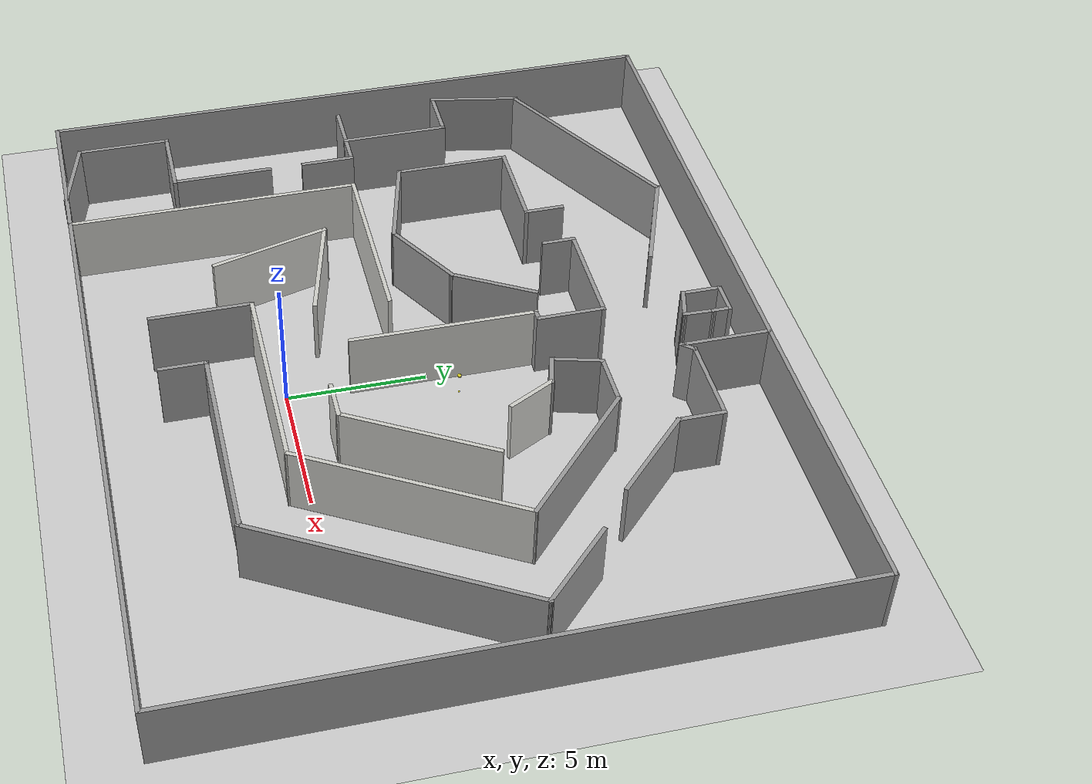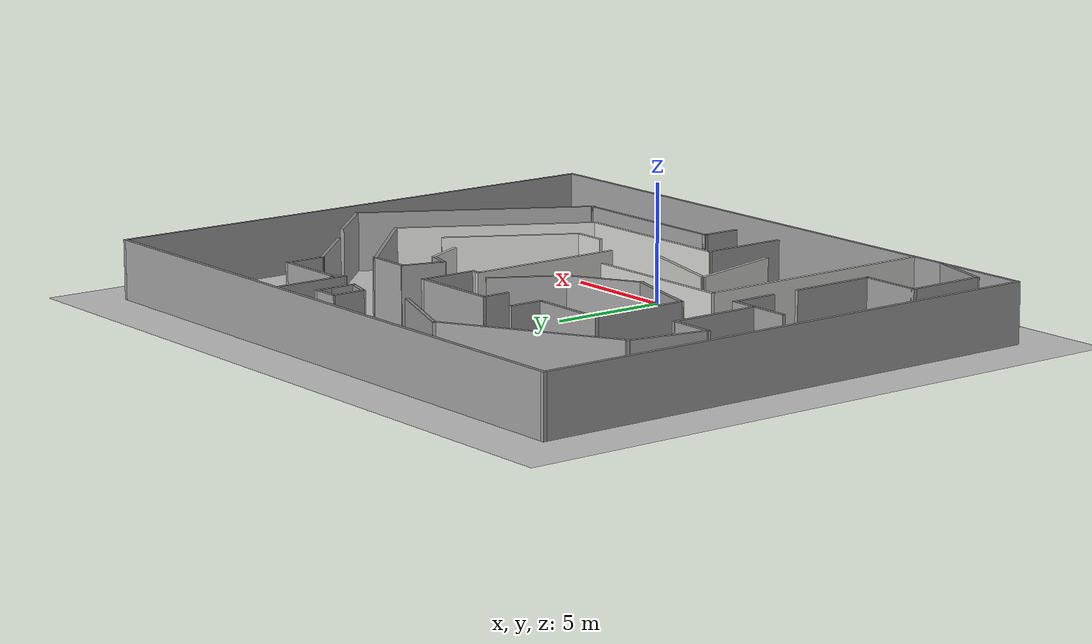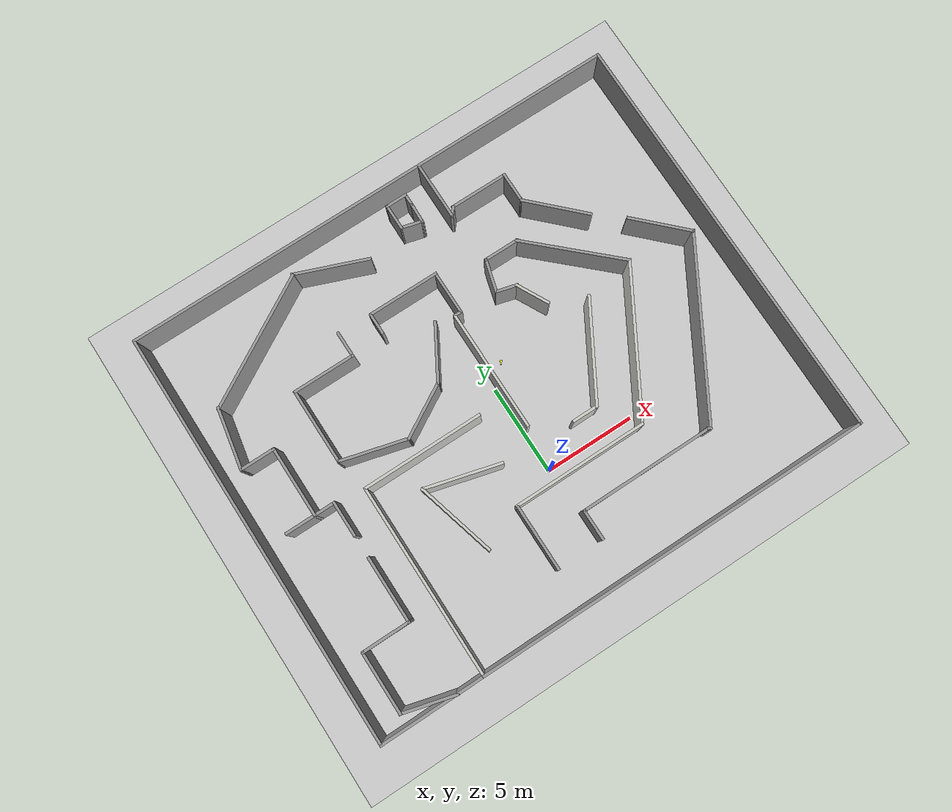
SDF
<?xml version="1.0" ?>
<sdf version="1.4">
  <world name="default">
    <include>
      <uri>model://ground_plane</uri>
    </include>
    <include>
      <uri>model://sun</uri>
    </include>
    <include>
	 	<uri>model://plastun_gazebo/maps/Labirint</uri>
      <name>Labirint</name>
      <pose>0.0 5.0 0 0 0 0</pose>
    </include>
        <include>
		<uri>model://plastun_gazebo/maps/Plafon</uri>
      <name>Plafon</name>
      <pose>1.0 6.0 0 0 0 0</pose>
    </include>
  </world>
</sdf>

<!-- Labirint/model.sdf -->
<sdf version='1.6'>
  <model name='Labirint'>
    <pose frame=''>-1.38385 -0.480945 0 0 -0 0</pose>
    <link name='Wall_0'>
      <collision name='Wall_0_Collision'>
        <geometry>
          <box>
            <size>6.75 0.15 2.5</size>
          </box>
        </geometry>
        <pose frame=''>0 0 1.25 0 -0 0</pose>
      </collision>
      <visual name='Wall_0_Visual'>
        <pose frame=''>0 0 1.25 0 -0 0</pose>
        <geometry>
          <box>
            <size>6.75 0.15 2.5</size>
          </box>
        </geometry>
        <material>
          <script>
            <uri>file://media/materials/scripts/gazebo.material</uri>
            <name>Gazebo/CeilingTiled</name>
          </script>
          <ambient>1 1 1 1</ambient>
        </material>
      </visual>
      <pose frame=''>0.153852 0.630945 0 0 -0 1.5708</pose>
    </link>
    <link name='Wall_1'>
      <collision name='Wall_1_Collision'>
        <geometry>
          <box>
            <size>0.5 0.15 2.5</size>
          </box>
        </geometry>
        <pose frame=''>0 0 1.25 0 -0 0</pose>
      </collision>
      <visual name='Wall_1_Visual'>
        <pose frame=''>0 0 1.25 0 -0 0</pose>
        <geometry>
          <box>
            <size>0.5 0.15 2.5</size>
          </box>
        </geometry>
        <material>
          <script>
            <uri>file://media/materials/scripts/gazebo.material</uri>
            <name>Gazebo/Grey</name>
          </script>
          <ambient>1 1 1 1</ambient>
        </material>
      </visual>
      <pose frame=''>0.328853 3.93094 0 0 -0 0</pose>
    </link>
    <link name='Wall_10'>
      <collision name='Wall_10_Collision'>
        <geometry>
          <box>
            <size>3.25 0.15 2.5</size>
          </box>
        </geometry>
        <pose frame=''>0 0 1.25 0 -0 0</pose>
      </collision>
      <visual name='Wall_10_Visual'>
        <pose frame=''>0 0 1.25 0 -0 0</pose>
        <geometry>
          <box>
            <size>3.25 0.15 2.5</size>
          </box>
        </geometry>
        <material>
          <script>
            <uri>file://media/materials/scripts/gazebo.material</uri>
            <name>Gazebo/Grey</name>
          </script>
          <ambient>1 1 1 1</ambient>
        </material>
      </visual>
      <pose frame=''>-3.73871 0.74657 0 0 -0 0.523599</pose>
    </link>
    <link name='Wall_11'>
      <collision name='Wall_11_Collision'>
        <geometry>
          <box>
            <size>3.25 0.15 2.5</size>
          </box>
        </geometry>
        <pose frame=''>0 0 1.25 0 -0 0</pose>
      </collision>
      <visual name='Wall_11_Visual'>
        <pose frame=''>0 0 1.25 0 -0 0</pose>
        <geometry>
          <box>
            <size>3.25 0.15 2.5</size>
          </box>
        </geometry>
        <material>
          <script>
            <uri>file://media/materials/scripts/gazebo.material</uri>
            <name>Gazebo/Grey</name>
          </script>
          <ambient>1 1 1 1</ambient>
        </material>
      </visual>
      <pose frame=''>-1.62137 2.86391 0 0 -0 1.0472</pose>
    </link>
    <link name='Wall_13'>
      <collision name='Wall_13_Collision'>
        <geometry>
          <box>
            <size>1.85876 0.15 2.5</size>
          </box>
        </geometry>
        <pose frame=''>0 0 1.25 0 -0 0</pose>
      </collision>
      <visual name='Wall_13_Visual'>
        <pose frame=''>0 0 1.25 0 -0 0</pose>
        <geometry>
          <box>
            <size>1.85876 0.15 2.5</size>
          </box>
        </geometry>
        <material>
          <script>
            <uri>file://media/materials/scripts/gazebo.material</uri>
            <name>Gazebo/Grey</name>
          </script>
          <ambient>1 1 1 1</ambient>
        </material>
      </visual>
      <pose frame=''>2.79429 4.68292 0 0 -0 1.29986</pose>
    </link>
    <link name='Wall_14'>
      <collision name='Wall_14_Collision'>
        <geometry>
          <box>
            <size>2 0.15 2.5</size>
          </box>
        </geometry>
        <pose frame=''>0 0 1.25 0 -0 0</pose>
      </collision>
      <visual name='Wall_14_Visual'>
        <pose frame=''>0 0 1.25 0 -0 0</pose>
        <geometry>
          <box>
            <size>2 0.15 2.5</size>
          </box>
        </geometry>
        <material>
          <script>
            <uri>file://media/materials/scripts/gazebo.material</uri>
            <name>Gazebo/Grey</name>
          </script>
          <ambient>1 1 1 1</ambient>
        </material>
      </visual>
      <pose frame=''>3.98313 5.50613 0 0 -0 0</pose>
    </link>
    <link name='Wall_15'>
      <collision name='Wall_15_Collision'>
        <geometry>
          <box>
            <size>5.93174 0.15 2.5</size>
          </box>
        </geometry>
        <pose frame=''>0 0 1.25 0 -0 0</pose>
      </collision>
      <visual name='Wall_15_Visual'>
        <pose frame=''>0 0 1.25 0 -0 0</pose>
        <geometry>
          <box>
            <size>5.93174 0.15 2.5</size>
          </box>
        </geometry>
        <material>
          <script>
            <uri>file://media/materials/scripts/gazebo.material</uri>
            <name>Gazebo/Grey</name>
          </script>
          <ambient>1 1 1 1</ambient>
        </material>
      </visual>
      <pose frame=''>6.97774 3.52447 0 0 0 -0.755277</pose>
    </link>
    <link name='Wall_16'>
      <collision name='Wall_16_Collision'>
        <geometry>
          <box>
            <size>8.5 0.15 2.5</size>
          </box>
        </geometry>
        <pose frame=''>0 0 1.25 0 -0 0</pose>
      </collision>
      <visual name='Wall_16_Visual'>
        <pose frame=''>0 0 1.25 0 -0 0</pose>
        <geometry>
          <box>
            <size>8.5 0.15 2.5</size>
          </box>
        </geometry>
        <material>
          <script>
            <uri>file://media/materials/scripts/gazebo.material</uri>
            <name>Gazebo/CeilingTiled</name>
          </script>
          <ambient>1 1 1 1</ambient>
        </material>
      </visual>
      <pose frame=''>6.99503 -2.07285 0 0 0 -2.0944</pose>
    </link>
    <link name='Wall_17'>
      <collision name='Wall_17_Collision'>
        <geometry>
          <box>
            <size>7.5 0.15 2.5</size>
          </box>
        </geometry>
        <pose frame=''>0 0 1.25 0 -0 0</pose>
      </collision>
      <visual name='Wall_17_Visual'>
        <pose frame=''>0 0 1.25 0 -0 0</pose>
        <geometry>
          <box>
            <size>7.5 0.15 2.5</size>
          </box>
        </geometry>
        <material>
          <script>
            <uri>file://media/materials/scripts/gazebo.material</uri>
            <name>Gazebo/CeilingTiled</name>
          </script>
          <ambient>1 1 1 1</ambient>
        </material>
      </visual>
      <pose frame=''>1.23253 -5.68851 0 0 -0 3.14159</pose>
    </link>
    <link name='Wall_18'>
      <collision name='Wall_18_Collision'>
        <geometry>
          <box>
            <size>3.75 0.15 2.5</size>
          </box>
        </geometry>
        <pose frame=''>0 0 1.25 0 -0 0</pose>
      </collision>
      <visual name='Wall_18_Visual'>
        <pose frame=''>0 0 1.25 0 -0 0</pose>
        <geometry>
          <box>
            <size>3.75 0.15 2.5</size>
          </box>
        </geometry>
        <material>
          <script>
            <uri>file://media/materials/scripts/gazebo.material</uri>
            <name>Gazebo/Grey</name>
          </script>
          <ambient>1 1 1 1</ambient>
        </material>
      </visual>
      <pose frame=''>-2.44247 -7.48851 0 0 0 -1.5708</pose>
    </link>
    <link name='Wall_2'>
      <collision name='Wall_2_Collision'>
        <geometry>
          <box>
            <size>2.5 0.15 2.5</size>
          </box>
        </geometry>
        <pose frame=''>0 0 1.25 0 -0 0</pose>
      </collision>
      <visual name='Wall_2_Visual'>
        <pose frame=''>0 0 1.25 0 -0 0</pose>
        <geometry>
          <box>
            <size>2.5 0.15 2.5</size>
          </box>
        </geometry>
        <material>
          <script>
            <uri>file://media/materials/scripts/gazebo.material</uri>
            <name>Gazebo/Grey</name>
          </script>
          <ambient>1 1 1 1</ambient>
        </material>
      </visual>
      <pose frame=''>0.503852 5.10595 0 0 -0 1.5708</pose>
    </link>
    <link name='Wall_20'>
      <collision name='Wall_20_Collision'>
        <geometry>
          <box>
            <size>1.75 0.15 2.5</size>
          </box>
        </geometry>
        <pose frame=''>0 0 1.25 0 -0 0</pose>
      </collision>
      <visual name='Wall_20_Visual'>
        <pose frame=''>0 0 1.25 0 -0 0</pose>
        <geometry>
          <box>
            <size>1.75 0.15 2.5</size>
          </box>
        </geometry>
        <material>
          <script>
            <uri>file://media/materials/scripts/gazebo.material</uri>
            <name>Gazebo/Grey</name>
          </script>
          <ambient>1 1 1 1</ambient>
        </material>
      </visual>
      <pose frame=''>0.146385 -8.46003 0 0 -0 1.5708</pose>
    </link>
    <link name='Wall_21'>
      <collision name='Wall_21_Collision'>
        <geometry>
          <box>
            <size>0.16 0.15 2.5</size>
          </box>
        </geometry>
        <pose frame=''>0 0 1.25 0 -0 0</pose>
      </collision>
      <visual name='Wall_21_Visual'>
        <pose frame=''>0 0 1.25 0 -0 0</pose>
        <geometry>
          <box>
            <size>0.16 0.15 2.5</size>
          </box>
        </geometry>
        <material>
          <script>
            <uri>file://media/materials/scripts/gazebo.material</uri>
            <name>Gazebo/Grey</name>
          </script>
          <ambient>1 1 1 1</ambient>
        </material>
      </visual>
      <pose frame=''>0.151385 -7.66003 0 0 -0 0</pose>
    </link>
    <link name='Wall_22'>
      <collision name='Wall_22_Collision'>
        <geometry>
          <box>
            <size>7.5 0.15 2.5</size>
          </box>
        </geometry>
        <pose frame=''>0 0 1.25 0 -0 0</pose>
      </collision>
      <visual name='Wall_22_Visual'>
        <pose frame=''>0 0 1.25 0 -0 0</pose>
        <geometry>
          <box>
            <size>7.5 0.15 2.5</size>
          </box>
        </geometry>
        <material>
          <script>
            <uri>file://media/materials/scripts/gazebo.material</uri>
            <name>Gazebo/Grey</name>
          </script>
          <ambient>1 1 1 1</ambient>
        </material>
      </visual>
      <pose frame=''>3.83139 -7.66003 0 0 -0 0</pose>
    </link>
    <link name='Wall_23'>
      <collision name='Wall_23_Collision'>
        <geometry>
          <box>
            <size>0.25 0.15 2.5</size>
          </box>
        </geometry>
        <pose frame=''>0 0 1.25 0 -0 0</pose>
      </collision>
      <visual name='Wall_23_Visual'>
        <pose frame=''>0 0 1.25 0 -0 0</pose>
        <geometry>
          <box>
            <size>0.25 0.15 2.5</size>
          </box>
        </geometry>
        <material>
          <script>
            <uri>file://media/materials/scripts/gazebo.material</uri>
            <name>Gazebo/Grey</name>
          </script>
          <ambient>1 1 1 1</ambient>
        </material>
      </visual>
      <pose frame=''>7.54969 -7.68503 0 0 0 -0.523599</pose>
    </link>
    <link name='Wall_24'>
      <collision name='Wall_24_Collision'>
        <geometry>
          <box>
            <size>10.25 0.15 2.5</size>
          </box>
        </geometry>
        <pose frame=''>0 0 1.25 0 -0 0</pose>
      </collision>
      <visual name='Wall_24_Visual'>
        <pose frame=''>0 0 1.25 0 -0 0</pose>
        <geometry>
          <box>
            <size>10.25 0.15 2.5</size>
          </box>
        </geometry>
        <material>
          <script>
            <uri>file://media/materials/scripts/gazebo.material</uri>
            <name>Gazebo/Grey</name>
          </script>
          <ambient>1 1 1 1</ambient>
        </material>
      </visual>
      <pose frame=''>10.118 -3.33661 0 0 -0 1.0472</pose>
    </link>
    <link name='Wall_25'>
      <collision name='Wall_25_Collision'>
        <geometry>
          <box>
            <size>0.15 0.15 2.5</size>
          </box>
        </geometry>
        <pose frame=''>0 0 1.25 0 -0 0</pose>
      </collision>
      <visual name='Wall_25_Visual'>
        <pose frame=''>0 0 1.25 0 -0 0</pose>
        <geometry>
          <box>
            <size>0.15 0.15 2.5</size>
          </box>
        </geometry>
        <material>
          <script>
            <uri>file://media/materials/scripts/gazebo.material</uri>
            <name>Gazebo/Grey</name>
          </script>
          <ambient>1 1 1 1</ambient>
        </material>
      </visual>
      <pose frame=''>12.643 1.03682 0 0 -0 0</pose>
    </link>
    <link name='Wall_26'>
      <collision name='Wall_26_Collision'>
        <geometry>
          <box>
            <size>3.5 0.15 2.5</size>
          </box>
        </geometry>
        <pose frame=''>0 0 1.25 0 -0 0</pose>
      </collision>
      <visual name='Wall_26_Visual'>
        <pose frame=''>0 0 1.25 0 -0 0</pose>
        <geometry>
          <box>
            <size>3.5 0.15 2.5</size>
          </box>
        </geometry>
        <material>
          <script>
            <uri>file://media/materials/scripts/gazebo.material</uri>
            <name>Gazebo/Grey</name>
          </script>
          <ambient>1 1 1 1</ambient>
        </material>
      </visual>
      <pose frame=''>11.4586 2.22123 0 0 -0 2.35619</pose>
    </link>
    <link name='Wall_28'>
      <collision name='Wall_28_Collision'>
        <geometry>
          <box>
            <size>3.75 0.15 2.5</size>
          </box>
        </geometry>
        <pose frame=''>0 0 1.25 0 -0 0</pose>
      </collision>
      <visual name='Wall_28_Visual'>
        <pose frame=''>0 0 1.25 0 -0 0</pose>
        <geometry>
          <box>
            <size>3.75 0.15 2.5</size>
          </box>
        </geometry>
        <material>
          <script>
            <uri>file://media/materials/scripts/gazebo.material</uri>
            <name>Gazebo/Grey</name>
          </script>
          <ambient>1 1 1 1</ambient>
        </material>
      </visual>
      <pose frame=''>7.52704 5.87689 0 0 -0 2.35619</pose>
    </link>
    <link name='Wall_29'>
      <collision name='Wall_29_Collision'>
        <geometry>
          <box>
            <size>1.75 0.15 2.5</size>
          </box>
        </geometry>
        <pose frame=''>0 0 1.25 0 -0 0</pose>
      </collision>
      <visual name='Wall_29_Visual'>
        <pose frame=''>0 0 1.25 0 -0 0</pose>
        <geometry>
          <box>
            <size>1.75 0.15 2.5</size>
          </box>
        </geometry>
        <material>
          <script>
            <uri>file://media/materials/scripts/gazebo.material</uri>
            <name>Gazebo/Grey</name>
          </script>
          <ambient>1 1 1 1</ambient>
        </material>
      </visual>
      <pose frame=''>6.25425 7.94968 0 0 -0 1.5708</pose>
    </link>
    <link name='Wall_3'>
      <collision name='Wall_3_Collision'>
        <geometry>
          <box>
            <size>4 0.15 2.5</size>
          </box>
        </geometry>
        <pose frame=''>0 0 1.25 0 -0 0</pose>
      </collision>
      <visual name='Wall_3_Visual'>
        <pose frame=''>0 0 1.25 0 -0 0</pose>
        <geometry>
          <box>
            <size>4 0.15 2.5</size>
          </box>
        </geometry>
        <material>
          <script>
            <uri>file://media/materials/scripts/gazebo.material</uri>
            <name>Gazebo/Grey</name>
          </script>
          <ambient>1 1 1 1</ambient>
        </material>
      </visual>
      <pose frame=''>-1.42115 6.28095 0 0 -0 3.14159</pose>
    </link>
    <link name='Wall_32'>
      <collision name='Wall_32_Collision'>
        <geometry>
          <box>
            <size>4.12972 0.15 2.5</size>
          </box>
        </geometry>
        <pose frame=''>0 0 1.25 0 -0 0</pose>
      </collision>
      <visual name='Wall_32_Visual'>
        <pose frame=''>0 0 1.25 0 -0 0</pose>
        <geometry>
          <box>
            <size>4.12972 0.15 2.5</size>
          </box>
        </geometry>
        <material>
          <script>
            <uri>file://media/materials/scripts/gazebo.material</uri>
            <name>Gazebo/Grey</name>
          </script>
          <ambient>1 1 1 1</ambient>
        </material>
      </visual>
      <pose frame=''>-3.70011 9.47142 0 0 -0 2.77042</pose>
    </link>
    <link name='Wall_34'>
      <collision name='Wall_34_Collision'>
        <geometry>
          <box>
            <size>7.75 0.15 2.5</size>
          </box>
        </geometry>
        <pose frame=''>0 0 1.25 0 -0 0</pose>
      </collision>
      <visual name='Wall_34_Visual'>
        <pose frame=''>0 0 1.25 0 -0 0</pose>
        <geometry>
          <box>
            <size>7.75 0.15 2.5</size>
          </box>
        </geometry>
        <material>
          <script>
            <uri>file://media/materials/scripts/gazebo.material</uri>
            <name>Gazebo/Grey</name>
          </script>
          <ambient>1 1 1 1</ambient>
        </material>
      </visual>
      <pose frame=''>-8.84536 8.23965 0 0 0 -2.61799</pose>
    </link>
    <link name='Wall_36'>
      <collision name='Wall_36_Collision'>
        <geometry>
          <box>
            <size>1.25 0.15 2.5</size>
          </box>
        </geometry>
        <pose frame=''>0 0 1.25 0 -0 0</pose>
      </collision>
      <visual name='Wall_36_Visual'>
        <pose frame=''>0 0 1.25 0 -0 0</pose>
        <geometry>
          <box>
            <size>1.25 0.15 2.5</size>
          </box>
        </geometry>
        <material>
          <script>
            <uri>file://media/materials/scripts/gazebo.material</uri>
            <name>Gazebo/Grey</name>
          </script>
          <ambient>1 1 1 1</ambient>
        </material>
      </visual>
      <pose frame=''>3.09689 3.69292 0 0 0 -0.261799</pose>
    </link>
    <link name='Wall_37'>
      <collision name='Wall_37_Collision'>
        <geometry>
          <box>
            <size>1.94382 0.15 2.5</size>
          </box>
        </geometry>
        <pose frame=''>0 0 1.25 0 -0 0</pose>
      </collision>
      <visual name='Wall_37_Visual'>
        <pose frame=''>0 0 1.25 0 -0 0</pose>
        <geometry>
          <box>
            <size>1.94382 0.15 2.5</size>
          </box>
        </geometry>
        <material>
          <script>
            <uri>file://media/materials/scripts/gazebo.material</uri>
            <name>Gazebo/CeilingTiled</name>
          </script>
          <ambient>1 1 1 1</ambient>
        </material>
      </visual>
      <pose frame=''>4.01658 2.75366 0 0 0 -1.09407</pose>
    </link>
    <link name='Wall_39'>
      <collision name='Wall_39_Collision'>
        <geometry>
          <box>
            <size>5.75 0.15 2.5</size>
          </box>
        </geometry>
        <pose frame=''>0 0 1.25 0 -0 0</pose>
      </collision>
      <visual name='Wall_39_Visual'>
        <pose frame=''>0 0 1.25 0 -0 0</pose>
        <geometry>
          <box>
            <size>5.75 0.15 2.5</size>
          </box>
        </geometry>
        <material>
          <script>
            <uri>file://media/materials/scripts/gazebo.material</uri>
            <name>Gazebo/CeilingTiled</name>
          </script>
          <ambient>1 1 1 1</ambient>
        </material>
      </visual>
      <pose frame=''>4.93407 -1.31007 0 0 0 -2.0944</pose>
    </link>
    <link name='Wall_4'>
      <collision name='Wall_4_Collision'>
        <geometry>
          <box>
            <size>1.25 0.15 2.5</size>
          </box>
        </geometry>
        <pose frame=''>0 0 1.25 0 -0 0</pose>
      </collision>
      <visual name='Wall_4_Visual'>
        <pose frame=''>0 0 1.25 0 -0 0</pose>
        <geometry>
          <box>
            <size>1.25 0.15 2.5</size>
          </box>
        </geometry>
        <material>
          <script>
            <uri>file://media/materials/scripts/gazebo.material</uri>
            <name>Gazebo/Grey</name>
          </script>
          <ambient>1 1 1 1</ambient>
        </material>
      </visual>
      <pose frame=''>-3.34615 5.73095 0 0 0 -1.5708</pose>
    </link>
    <link name='Wall_40'>
      <collision name='Wall_40_Collision'>
        <geometry>
          <box>
            <size>1.5 0.15 2.5</size>
          </box>
        </geometry>
        <pose frame=''>0 0 1.25 0 -0 0</pose>
      </collision>
      <visual name='Wall_40_Visual'>
        <pose frame=''>0 0 1.25 0 -0 0</pose>
        <geometry>
          <box>
            <size>1.5 0.15 2.5</size>
          </box>
        </geometry>
        <material>
          <script>
            <uri>file://media/materials/scripts/gazebo.material</uri>
            <name>Gazebo/CeilingTiled</name>
          </script>
          <ambient>1 1 1 1</ambient>
        </material>
      </visual>
      <pose frame=''>2.85907 -3.73494 0 0 -0 3.14159</pose>
    </link>
    <link name='Wall_42'>
      <collision name='Wall_42_Collision'>
        <geometry>
          <box>
            <size>4.25 0.15 2.5</size>
          </box>
        </geometry>
        <pose frame=''>0 0 1.25 0 -0 0</pose>
      </collision>
      <visual name='Wall_42_Visual'>
        <pose frame=''>0 0 1.25 0 -0 0</pose>
        <geometry>
          <box>
            <size>4.25 0.15 2.5</size>
          </box>
        </geometry>
        <material>
          <script>
            <uri>file://media/materials/scripts/gazebo.material</uri>
            <name>Gazebo/CeilingTiled</name>
          </script>
          <ambient>1 1 1 1</ambient>
        </material>
      </visual>
      <pose frame=''>-3.88082 -3.00701 0 0 -0 2.87979</pose>
    </link>
    <link name='Wall_43'>
      <collision name='Wall_43_Collision'>
        <geometry>
          <box>
            <size>4.5 0.15 2.5</size>
          </box>
        </geometry>
        <pose frame=''>0 0 1.25 0 -0 0</pose>
      </collision>
      <visual name='Wall_43_Visual'>
        <pose frame=''>0 0 1.25 0 -0 0</pose>
        <geometry>
          <box>
            <size>4.5 0.15 2.5</size>
          </box>
        </geometry>
        <material>
          <script>
            <uri>file://media/materials/scripts/gazebo.material</uri>
            <name>Gazebo/CeilingTiled</name>
          </script>
          <ambient>1 1 1 1</ambient>
        </material>
      </visual>
      <pose frame=''>-5.29803 -4.57732 0 0 0 -1.309</pose>
    </link>
    <link name='Wall_46'>
      <collision name='Wall_46_Collision'>
        <geometry>
          <box>
            <size>6.75 0.15 2.5</size>
          </box>
        </geometry>
        <pose frame=''>0 0 1.25 0 -0 0</pose>
      </collision>
      <visual name='Wall_46_Visual'>
        <pose frame=''>0 0 1.25 0 -0 0</pose>
        <geometry>
          <box>
            <size>6.75 0.15 2.5</size>
          </box>
        </geometry>
        <material>
          <script>
            <uri>file://media/materials/scripts/gazebo.material</uri>
            <name>Gazebo/CeilingTiled</name>
          </script>
          <ambient>1 1 1 1</ambient>
        </material>
      </visual>
      <pose frame=''>-4.875 -0.932252 0 0 -0 3.14159</pose>
    </link>
    <link name='Wall_47'>
      <collision name='Wall_47_Collision'>
        <geometry>
          <box>
            <size>10.75 0.15 2.5</size>
          </box>
        </geometry>
        <pose frame=''>0 0 1.25 0 -0 0</pose>
      </collision>
      <visual name='Wall_47_Visual'>
        <pose frame=''>0 0 1.25 0 -0 0</pose>
        <geometry>
          <box>
            <size>10.75 0.15 2.5</size>
          </box>
        </geometry>
        <material>
          <script>
            <uri>file://media/materials/scripts/gazebo.material</uri>
            <name>Gazebo/CeilingTiled</name>
          </script>
          <ambient>1 1 1 1</ambient>
        </material>
      </visual>
      <pose frame=''>-8.175 -6.23225 0 0 0 -1.5708</pose>
    </link>
    <link name='Wall_48'>
      <collision name='Wall_48_Collision'>
        <geometry>
          <box>
            <size>22.25 0.15 2.5</size>
          </box>
        </geometry>
        <pose frame=''>0 0 1.25 0 -0 0</pose>
      </collision>
      <visual name='Wall_48_Visual'>
        <pose frame=''>0 0 1.25 0 -0 0</pose>
        <geometry>
          <box>
            <size>22.25 0.15 2.5</size>
          </box>
        </geometry>
        <material>
          <script>
            <uri>file://media/materials/scripts/gazebo.material</uri>
            <name>Gazebo/Grey</name>
          </script>
          <ambient>1 1 1 1</ambient>
        </material>
      </visual>
      <pose frame=''>2.875 -11.5323 0 0 -0 0</pose>
    </link>
    <link name='Wall_49'>
      <collision name='Wall_49_Collision'>
        <geometry>
          <box>
            <size>23.25 0.15 2.5</size>
          </box>
        </geometry>
        <pose frame=''>0 0 1.25 0 -0 0</pose>
      </collision>
      <visual name='Wall_49_Visual'>
        <pose frame=''>0 0 1.25 0 -0 0</pose>
        <geometry>
          <box>
            <size>23.25 0.15 2.5</size>
          </box>
        </geometry>
        <material>
          <script>
            <uri>file://media/materials/scripts/gazebo.material</uri>
            <name>Gazebo/Grey</name>
          </script>
          <ambient>1 1 1 1</ambient>
        </material>
      </visual>
      <pose frame=''>13.925 0.017748 0 0 -0 1.5708</pose>
    </link>
    <link name='Wall_50'>
      <collision name='Wall_50_Collision'>
        <geometry>
          <box>
            <size>28 0.15 2.5</size>
          </box>
        </geometry>
        <pose frame=''>0 0 1.25 0 -0 0</pose>
      </collision>
      <visual name='Wall_50_Visual'>
        <pose frame=''>0 0 1.25 0 -0 0</pose>
        <geometry>
          <box>
            <size>28 0.15 2.5</size>
          </box>
        </geometry>
        <material>
          <script>
            <uri>file://media/materials/scripts/gazebo.material</uri>
            <name>Gazebo/Grey</name>
          </script>
          <ambient>1 1 1 1</ambient>
        </material>
      </visual>
      <pose frame=''>0 11.5677 0 0 -0 3.14159</pose>
    </link>
    <link name='Wall_51'>
      <collision name='Wall_51_Collision'>
        <geometry>
          <box>
            <size>23.25 0.15 2.5</size>
          </box>
        </geometry>
        <pose frame=''>0 0 1.25 0 -0 0</pose>
      </collision>
      <visual name='Wall_51_Visual'>
        <pose frame=''>0 0 1.25 0 -0 0</pose>
        <geometry>
          <box>
            <size>23.25 0.15 2.5</size>
          </box>
        </geometry>
        <material>
          <script>
            <uri>file://media/materials/scripts/gazebo.material</uri>
            <name>Gazebo/Grey</name>
          </script>
          <ambient>1 1 1 1</ambient>
        </material>
      </visual>
      <pose frame=''>-13.925 0.017748 0 0 0 -1.5708</pose>
    </link>
    <link name='Wall_52'>
      <collision name='Wall_52_Collision'>
        <geometry>
          <box>
            <size>5.9 0.15 2.5</size>
          </box>
        </geometry>
        <pose frame=''>0 0 1.25 0 -0 0</pose>
      </collision>
      <visual name='Wall_52_Visual'>
        <pose frame=''>0 0 1.25 0 -0 0</pose>
        <geometry>
          <box>
            <size>5.9 0.15 2.5</size>
          </box>
        </geometry>
        <material>
          <script>
            <uri>file://media/materials/scripts/gazebo.material</uri>
            <name>Gazebo/Grey</name>
          </script>
          <ambient>1 1 1 1</ambient>
        </material>
      </visual>
      <pose frame=''>-11.05 -11.5323 0 0 -0 0</pose>
    </link>
    <link name='Wall_54'>
      <collision name='Wall_54_Collision'>
        <geometry>
          <box>
            <size>3.44649 0.15 2.5</size>
          </box>
        </geometry>
        <pose frame=''>0 0 1.25 0 -0 0</pose>
      </collision>
      <visual name='Wall_54_Visual'>
        <pose frame=''>0 0 1.25 0 -0 0</pose>
        <geometry>
          <box>
            <size>3.44649 0.15 2.5</size>
          </box>
        </geometry>
        <material>
          <script>
            <uri>file://media/materials/scripts/gazebo.material</uri>
            <name>Gazebo/Grey</name>
          </script>
          <ambient>1 1 1 1</ambient>
        </material>
      </visual>
      <pose frame=''>-12.4472 4.77451 0 0 0 -1.7606</pose>
    </link>
    <link name='Wall_55'>
      <collision name='Wall_55_Collision'>
        <geometry>
          <box>
            <size>2 0.15 2.5</size>
          </box>
        </geometry>
        <pose frame=''>0 0 1.25 0 -0 0</pose>
      </collision>
      <visual name='Wall_55_Visual'>
        <pose frame=''>0 0 1.25 0 -0 0</pose>
        <geometry>
          <box>
            <size>2 0.15 2.5</size>
          </box>
        </geometry>
        <material>
          <script>
            <uri>file://media/materials/scripts/gazebo.material</uri>
            <name>Gazebo/Grey</name>
          </script>
          <ambient>1 1 1 1</ambient>
        </material>
      </visual>
      <pose frame=''>-11.8332 3.15586 0 0 -0 0</pose>
    </link>
    <link name='Wall_56'>
      <collision name='Wall_56_Collision'>
        <geometry>
          <box>
            <size>4 0.15 2.5</size>
          </box>
        </geometry>
        <pose frame=''>0 0 1.25 0 -0 0</pose>
      </collision>
      <visual name='Wall_56_Visual'>
        <pose frame=''>0 0 1.25 0 -0 0</pose>
        <geometry>
          <box>
            <size>4 0.15 2.5</size>
          </box>
        </geometry>
        <material>
          <script>
            <uri>file://media/materials/scripts/gazebo.material</uri>
            <name>Gazebo/Grey</name>
          </script>
          <ambient>1 1 1 1</ambient>
        </material>
      </visual>
      <pose frame=''>-10.9082 1.23086 0 0 0 -1.5708</pose>
    </link>
    <link name='Wall_57'>
      <collision name='Wall_57_Collision'>
        <geometry>
          <box>
            <size>1.25 0.15 2.5</size>
          </box>
        </geometry>
        <pose frame=''>0 0 1.25 0 -0 0</pose>
      </collision>
      <visual name='Wall_57_Visual'>
        <pose frame=''>0 0 1.25 0 -0 0</pose>
        <geometry>
          <box>
            <size>1.25 0.15 2.5</size>
          </box>
        </geometry>
        <material>
          <script>
            <uri>file://media/materials/scripts/gazebo.material</uri>
            <name>Gazebo/Grey</name>
          </script>
          <ambient>1 1 1 1</ambient>
        </material>
      </visual>
      <pose frame=''>-10.3582 -0.694137 0 0 -0 0</pose>
    </link>
    <link name='Wall_58'>
      <collision name='Wall_58_Collision'>
        <geometry>
          <box>
            <size>2 0.15 2.5</size>
          </box>
        </geometry>
        <pose frame=''>0 0 1.25 0 -0 0</pose>
      </collision>
      <visual name='Wall_58_Visual'>
        <pose frame=''>0 0 1.25 0 -0 0</pose>
        <geometry>
          <box>
            <size>2 0.15 2.5</size>
          </box>
        </geometry>
        <material>
          <script>
            <uri>file://media/materials/scripts/gazebo.material</uri>
            <name>Gazebo/Grey</name>
          </script>
          <ambient>1 1 1 1</ambient>
        </material>
      </visual>
      <pose frame=''>-9.8082 -1.61914 0 0 0 -1.5708</pose>
    </link>
    <link name='Wall_6'>
      <collision name='Wall_6_Collision'>
        <geometry>
          <box>
            <size>1.5 0.15 2.5</size>
          </box>
        </geometry>
        <pose frame=''>0 0 1.25 0 -0 0</pose>
      </collision>
      <visual name='Wall_6_Visual'>
        <pose frame=''>0 0 1.25 0 -0 0</pose>
        <geometry>
          <box>
            <size>1.5 0.15 2.5</size>
          </box>
        </geometry>
        <material>
          <script>
            <uri>file://media/materials/scripts/gazebo.material</uri>
            <name>Gazebo/Grey</name>
          </script>
          <ambient>1 1 1 1</ambient>
        </material>
      </visual>
      <pose frame=''>-5.20838 5.67832 0 0 0 -1.5708</pose>
    </link>
    <link name='Wall_60'>
      <collision name='Wall_60_Collision'>
        <geometry>
          <box>
            <size>1.75 0.15 2.5</size>
          </box>
        </geometry>
        <pose frame=''>0 0 1.25 0 -0 0</pose>
      </collision>
      <visual name='Wall_60_Visual'>
        <pose frame=''>0 0 1.25 0 -0 0</pose>
        <geometry>
          <box>
            <size>1.75 0.15 2.5</size>
          </box>
        </geometry>
        <material>
          <script>
            <uri>file://media/materials/scripts/gazebo.material</uri>
            <name>Gazebo/Grey</name>
          </script>
          <ambient>1 1 1 1</ambient>
        </material>
      </visual>
      <pose frame=''>-11.7082 -0.694137 0 0 -0 3.14159</pose>
    </link>
    <link name='Wall_63'>
      <collision name='Wall_63_Collision'>
        <geometry>
          <box>
            <size>3.75 0.15 2.5</size>
          </box>
        </geometry>
        <pose frame=''>0 0 1.25 0 -0 0</pose>
      </collision>
      <visual name='Wall_63_Visual'>
        <pose frame=''>0 0 1.25 0 -0 0</pose>
        <geometry>
          <box>
            <size>3.75 0.15 2.5</size>
          </box>
        </geometry>
        <material>
          <script>
            <uri>file://media/materials/scripts/gazebo.material</uri>
            <name>Gazebo/Grey</name>
          </script>
          <ambient>1 1 1 1</ambient>
        </material>
      </visual>
      <pose frame=''>-9.80973 -5.66326 0 0 0 -1.5708</pose>
    </link>
    <link name='Wall_64'>
      <collision name='Wall_64_Collision'>
        <geometry>
          <box>
            <size>2.75 0.15 2.5</size>
          </box>
        </geometry>
        <pose frame=''>0 0 1.25 0 -0 0</pose>
      </collision>
      <visual name='Wall_64_Visual'>
        <pose frame=''>0 0 1.25 0 -0 0</pose>
        <geometry>
          <box>
            <size>2.75 0.15 2.5</size>
          </box>
        </geometry>
        <material>
          <script>
            <uri>file://media/materials/scripts/gazebo.material</uri>
            <name>Gazebo/Grey</name>
          </script>
          <ambient>1 1 1 1</ambient>
        </material>
      </visual>
      <pose frame=''>-11.1097 -7.46326 0 0 -0 3.14159</pose>
    </link>
    <link name='Wall_66'>
      <collision name='Wall_66_Collision'>
        <geometry>
          <box>
            <size>3.5 0.15 2.5</size>
          </box>
        </geometry>
        <pose frame=''>0 0 1.25 0 -0 0</pose>
      </collision>
      <visual name='Wall_66_Visual'>
        <pose frame=''>0 0 1.25 0 -0 0</pose>
        <geometry>
          <box>
            <size>3.5 0.15 2.5</size>
          </box>
        </geometry>
        <material>
          <script>
            <uri>file://media/materials/scripts/gazebo.material</uri>
            <name>Gazebo/Grey</name>
          </script>
          <ambient>1 1 1 1</ambient>
        </material>
      </visual>
      <pose frame=''>-12.4097 -9.13826 0 0 0 -1.5708</pose>
    </link>
    <link name='Wall_67'>
      <collision name='Wall_67_Collision'>
        <geometry>
          <box>
            <size>3 0.15 2.5</size>
          </box>
        </geometry>
        <pose frame=''>0 0 1.25 0 -0 0</pose>
      </collision>
      <visual name='Wall_67_Visual'>
        <pose frame=''>0 0 1.25 0 -0 0</pose>
        <geometry>
          <box>
            <size>3 0.15 2.5</size>
          </box>
        </geometry>
        <material>
          <script>
            <uri>file://media/materials/scripts/gazebo.material</uri>
            <name>Gazebo/Grey</name>
          </script>
          <ambient>1 1 1 1</ambient>
        </material>
      </visual>
      <pose frame=''>-11.0333 -11.1821 0 0 0 -0.261799</pose>
    </link>
    <link name='Wall_69'>
      <collision name='Wall_69_Collision'>
        <geometry>
          <box>
            <size>3.25 0.15 2.5</size>
          </box>
        </geometry>
        <pose frame=''>0 0 1.25 0 -0 0</pose>
      </collision>
      <visual name='Wall_69_Visual'>
        <pose frame=''>0 0 1.25 0 -0 0</pose>
        <geometry>
          <box>
            <size>3.25 0.15 2.5</size>
          </box>
        </geometry>
        <material>
          <script>
            <uri>file://media/materials/scripts/gazebo.material</uri>
            <name>Gazebo/Grey</name>
          </script>
          <ambient>1 1 1 1</ambient>
        </material>
      </visual>
      <pose frame=''>4.70425 8.74968 0 0 -0 3.14159</pose>
    </link>
    <link name='Wall_7'>
      <collision name='Wall_7_Collision'>
        <geometry>
          <box>
            <size>3.5 0.15 2.5</size>
          </box>
        </geometry>
        <pose frame=''>0 0 1.25 0 -0 0</pose>
      </collision>
      <visual name='Wall_7_Visual'>
        <pose frame=''>0 0 1.25 0 -0 0</pose>
        <geometry>
          <box>
            <size>3.5 0.15 2.5</size>
          </box>
        </geometry>
        <material>
          <script>
            <uri>file://media/materials/scripts/gazebo.material</uri>
            <name>Gazebo/Grey</name>
          </script>
          <ambient>1 1 1 1</ambient>
        </material>
      </visual>
      <pose frame=''>-6.88338 5.00332 0 0 -0 3.14159</pose>
    </link>
    <link name='Wall_70'>
      <collision name='Wall_70_Collision'>
        <geometry>
          <box>
            <size>0.61793 0.15 2.5</size>
          </box>
        </geometry>
        <pose frame=''>0 0 1.25 0 -0 0</pose>
      </collision>
      <visual name='Wall_70_Visual'>
        <pose frame=''>0 0 1.25 0 -0 0</pose>
        <geometry>
          <box>
            <size>0.61793 0.15 2.5</size>
          </box>
        </geometry>
        <material>
          <script>
            <uri>file://media/materials/scripts/gazebo.material</uri>
            <name>Gazebo/Grey</name>
          </script>
          <ambient>1 1 1 1</ambient>
        </material>
      </visual>
      <pose frame=''>3.00425 8.57012 0 0 0 -2.26675</pose>
    </link>
    <link name='Wall_71'>
      <collision name='Wall_71_Collision'>
        <geometry>
          <box>
            <size>3.25 0.15 2.5</size>
          </box>
        </geometry>
        <pose frame=''>0 0 1.25 0 -0 0</pose>
      </collision>
      <visual name='Wall_71_Visual'>
        <pose frame=''>0 0 1.25 0 -0 0</pose>
        <geometry>
          <box>
            <size>3.25 0.15 2.5</size>
          </box>
        </geometry>
        <material>
          <script>
            <uri>file://media/materials/scripts/gazebo.material</uri>
            <name>Gazebo/Grey</name>
          </script>
          <ambient>1 1 1 1</ambient>
        </material>
      </visual>
      <pose frame=''>2.85425 9.99407 0 0 -0 1.5708</pose>
    </link>
    <link name='Wall_73'>
      <collision name='Wall_73_Collision'>
        <geometry>
          <box>
            <size>0.75 0.15 2.5</size>
          </box>
        </geometry>
        <pose frame=''>0 0 1.25 0 -0 0</pose>
      </collision>
      <visual name='Wall_73_Visual'>
        <pose frame=''>0 0 1.25 0 -0 0</pose>
        <geometry>
          <box>
            <size>0.75 0.15 2.5</size>
          </box>
        </geometry>
        <material>
          <script>
            <uri>file://media/materials/scripts/gazebo.material</uri>
            <name>Gazebo/Grey</name>
          </script>
          <ambient>1 1 1 1</ambient>
        </material>
      </visual>
      <pose frame=''>1.45239 10.3022 0 0 -0 1.5708</pose>
    </link>
    <link name='Wall_74'>
      <collision name='Wall_74_Collision'>
        <geometry>
          <box>
            <size>1.25 0.15 2.5</size>
          </box>
        </geometry>
        <pose frame=''>0 0 1.25 0 -0 0</pose>
      </collision>
      <visual name='Wall_74_Visual'>
        <pose frame=''>0 0 1.25 0 -0 0</pose>
        <geometry>
          <box>
            <size>1.25 0.15 2.5</size>
          </box>
        </geometry>
        <material>
          <script>
            <uri>file://media/materials/scripts/gazebo.material</uri>
            <name>Gazebo/Grey</name>
          </script>
          <ambient>1 1 1 1</ambient>
        </material>
      </visual>
      <pose frame=''>0.902394 10.6022 0 0 -0 3.14159</pose>
    </link>
    <link name='Wall_75'>
      <collision name='Wall_75_Collision'>
        <geometry>
          <box>
            <size>1.5 0.15 2.5</size>
          </box>
        </geometry>
        <pose frame=''>0 0 1.25 0 -0 0</pose>
      </collision>
      <visual name='Wall_75_Visual'>
        <pose frame=''>0 0 1.25 0 -0 0</pose>
        <geometry>
          <box>
            <size>1.5 0.15 2.5</size>
          </box>
        </geometry>
        <material>
          <script>
            <uri>file://media/materials/scripts/gazebo.material</uri>
            <name>Gazebo/Grey</name>
          </script>
          <ambient>1 1 1 1</ambient>
        </material>
      </visual>
      <pose frame=''>0.352394 9.92717 0 0 0 -1.5708</pose>
    </link>
    <link name='Wall_76'>
      <collision name='Wall_76_Collision'>
        <geometry>
          <box>
            <size>1.25 0.15 2.5</size>
          </box>
        </geometry>
        <pose frame=''>0 0 1.25 0 -0 0</pose>
      </collision>
      <visual name='Wall_76_Visual'>
        <pose frame=''>0 0 1.25 0 -0 0</pose>
        <geometry>
          <box>
            <size>1.25 0.15 2.5</size>
          </box>
        </geometry>
        <material>
          <script>
            <uri>file://media/materials/scripts/gazebo.material</uri>
            <name>Gazebo/Grey</name>
          </script>
          <ambient>1 1 1 1</ambient>
        </material>
      </visual>
      <pose frame=''>0.883654 9.10982 0 0 0 -0.261799</pose>
    </link>
    <link name='Wall_77'>
      <collision name='Wall_77_Collision'>
        <geometry>
          <box>
            <size>1.18538 0.15 2.5</size>
          </box>
        </geometry>
        <pose frame=''>0 0 1.25 0 -0 0</pose>
      </collision>
      <visual name='Wall_77_Visual'>
        <pose frame=''>0 0 1.25 0 -0 0</pose>
        <geometry>
          <box>
            <size>1.18538 0.15 2.5</size>
          </box>
        </geometry>
        <material>
          <script>
            <uri>file://media/materials/scripts/gazebo.material</uri>
            <name>Gazebo/Grey</name>
          </script>
          <ambient>1 1 1 1</ambient>
        </material>
      </visual>
      <pose frame=''>1.43365 9.48482 0 0 -0 1.53459</pose>
    </link>
    <link name='Wall_8'>
      <collision name='Wall_8_Collision'>
        <geometry>
          <box>
            <size>4.25 0.15 2.5</size>
          </box>
        </geometry>
        <pose frame=''>0 0 1.25 0 -0 0</pose>
      </collision>
      <visual name='Wall_8_Visual'>
        <pose frame=''>0 0 1.25 0 -0 0</pose>
        <geometry>
          <box>
            <size>4.25 0.15 2.5</size>
          </box>
        </geometry>
        <material>
          <script>
            <uri>file://media/materials/scripts/gazebo.material</uri>
            <name>Gazebo/Grey</name>
          </script>
          <ambient>1 1 1 1</ambient>
        </material>
      </visual>
      <pose frame=''>-8.55838 2.95332 0 0 0 -1.5708</pose>
    </link>
    <link name='Wall_9'>
      <collision name='Wall_9_Collision'>
        <geometry>
          <box>
            <size>3.75 0.15 2.5</size>
          </box>
        </geometry>
        <pose frame=''>0 0 1.25 0 -0 0</pose>
      </collision>
      <visual name='Wall_9_Visual'>
        <pose frame=''>0 0 1.25 0 -0 0</pose>
        <geometry>
          <box>
            <size>3.75 0.15 2.5</size>
          </box>
        </geometry>
        <material>
          <script>
            <uri>file://media/materials/scripts/gazebo.material</uri>
            <name>Gazebo/Grey</name>
          </script>
          <ambient>1 1 1 1</ambient>
        </material>
      </visual>
      <pose frame=''>-6.81971 0.437444 0 0 0 -0.261799</pose>
    </link>
    <static>1</static>
  </model>
</sdf>

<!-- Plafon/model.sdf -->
<sdf version='1.6'>
  <model name='Plafon'>
    <link name='Plafon'>
      <pose frame=''>0 0 0 0 -0 0</pose>
      <inertial>
        <mass>1</mass>
        <inertia>
          <ixx>0.166667</ixx>
          <ixy>0</ixy>
          <ixz>0</ixz>
          <iyy>0.166667</iyy>
          <iyz>0</iyz>
          <izz>0.166667</izz>
        </inertia>
        <pose frame=''>0 0 0 0 -0 0</pose>
      </inertial>
      <self_collide>0</self_collide>
      <kinematic>0</kinematic>
      <gravity>1</gravity>
      <visual name='visual'>
        <pose frame=''>0 0 0 0 -0 0</pose>
        <geometry>
          <mesh>
            <uri>model://plastun_gazebo/maps/Plafon/plafon.dae</uri>
            <scale>1 1 1</scale>
          </mesh>
        </geometry>
        <material>
          <lighting>1</lighting>
          <script>
            <uri>file://media/materials/scripts/gazebo.material</uri>
            <name>Gazebo/Yellow</name>
          </script>
        </material>
      </visual>
    </link>
    <static>1</static>
    <allow_auto_disable>1</allow_auto_disable>
  </model>
</sdf>
